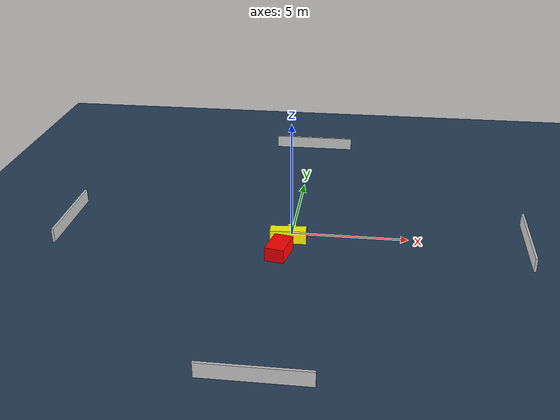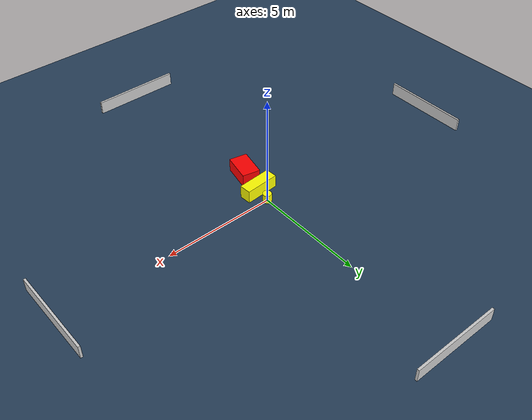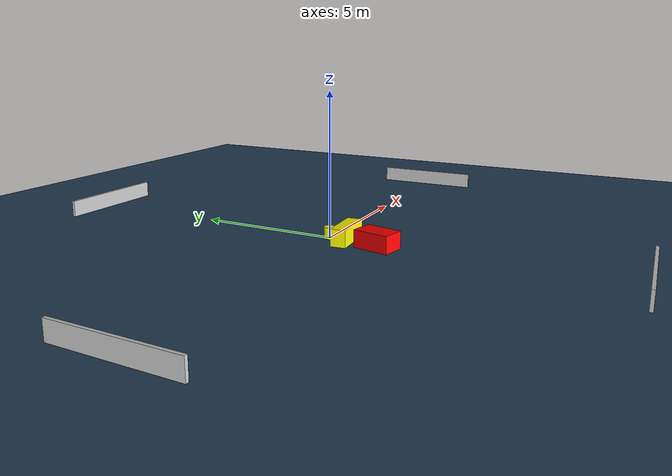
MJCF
<?xml version="1.0" ?>
<mujoco model="generated_environment">
  <option timestep="0.01" integrator="RK4" cone="elliptic"/>
  <default>
    <geom density="1"/>
  </default>
  <asset>
    <texture builtin="gradient" height="3072" name="skybox" rgb1="0.3 0.5 0.7" rgb2="0 0 0" type="skybox" width="512"/>
    <texture builtin="checker" height="300" name="groundplane" rgb1="0.2 0.3 0.4" rgb2="0.1 0.2 0.3" type="2d" width="300"/>
    <material name="groundplane" reflectance="0.2" texrepeat="5 5" texture="groundplane"/>
  </asset>
  <worldbody>
    <light dir="0 0 -1" directional="true" pos="0 0 1.5"/>
    <geom condim="3" friction="0.5 0.005 0.001" material="groundplane" name="floor" pos="0 0 0" size="0 0 0.05" type="plane"/>
    <body name="walls">
      <geom name="wall_1" condim="4" pos="-10.0 0.0 0.3" rgba="0.800000011920929 0.800000011920929 0.800000011920929 1.0" size="0.05 2.0 0.3" type="box"/>
      <geom name="wall_2" condim="4" pos="10.0 0.0 0.3" rgba="0.800000011920929 0.800000011920929 0.800000011920929 1.0" size="0.05 2.0 0.3" type="box"/>
      <geom name="wall_3" condim="4" pos="0.0 -10.0 0.3" rgba="0.800000011920929 0.800000011920929 0.800000011920929 1.0" size="2.0 0.05 0.3" type="box"/>
      <geom name="wall_4" condim="4" pos="0.0 10.0 0.3" rgba="0.800000011920929 0.800000011920929 0.800000011920929 1.0" size="2.0 0.05 0.3" type="box"/>
    </body>
    <body name="robot">
      <joint name="joint_x" type="slide" pos="0 0 0" axis="1 0 0"/>
      <joint name="joint_y" type="slide" pos="0 0 0" axis="0 1 0"/>
      <geom name="robot" type="cylinder" pos="0.0 0.0 0.2" size="0.2 0.2 0.0" mass="5.0" friction="1.0 0.005 0.0001" condim="4" rgba="1.0 1.0 0.0 1.0"/>
    </body>
    <body name="obstacle_1_movable">
      <geom name="obstacle_1_movable" condim="4" pos="-0.0829339817130975 -0.680758484965542 0.3" euler="0 0 93.78302225753953" friction="0.0 0.005 0.001" rgba="1.0 1.0 0.0 1.0" size="0.2628519189489967 0.7683799462494678 0.3" type="box" mass="0.1"/>
      <joint type="free"/>
    </body>
    <body name="obstacle_2_static">
      <geom name="obstacle_2_static" condim="4" pos="-0.31624671624238126 -1.8868811129256058 0.3" euler="0 0 258.1468019088423" friction="0.0 0.005 0.001" rgba="1.0 0.0 0.0 1.0" size="0.6402783939259253 0.40732334708397644 0.3" type="box"/>
    </body>
  </worldbody>
  <actuator>
    <motor name="actuator_x" joint="joint_x" gear="1" ctrlrange="-1 1"/>
    <motor name="actuator_y" joint="joint_y" gear="1" ctrlrange="-1 1"/>
  </actuator>
</mujoco>
